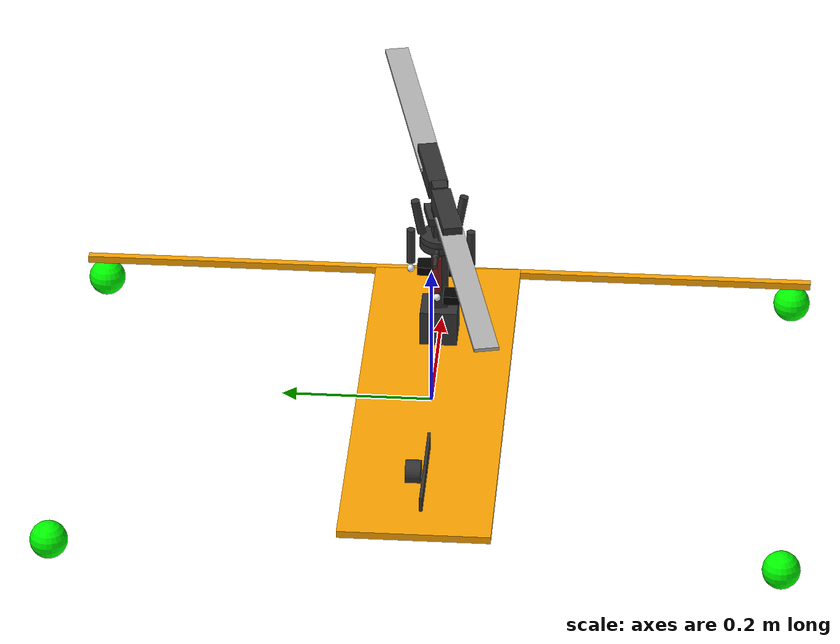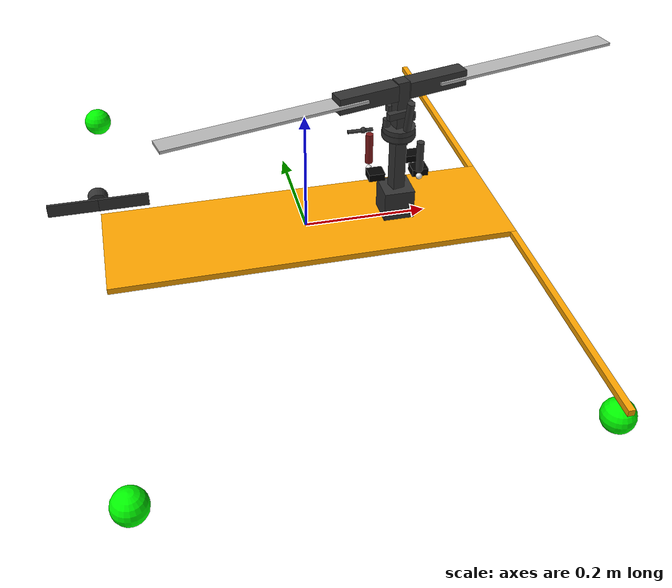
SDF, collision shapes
<?xml version="1.0"?>
<sdf version="1.9">
  <model name="helicopter_ddfp_ccw">
    <link name="base_link">
      <inertial>
        <pose degrees="true">0.16 0 0 0 0 0</pose>
        <mass>0.5</mass>
        <inertia>
          <ixx>0.001670833</ixx>
          <ixy>0</ixy>
          <ixz>0</ixz>
          <iyy>0.017608333</iyy>
          <iyz>0</iyz>
          <izz>0.019270833</izz>
        </inertia>
      </inertial>
      <collision name="collision">
        <geometry>
          <box>
            <size>0.65 0.2 0.01</size>
          </box>
        </geometry>
      </collision>
      <collision name="collision_stab_1">
        <pose degrees="true">0.32 0 0 0 0 0</pose>
        <geometry>
          <box>
            <size>0.01 1.0 0.01</size>
          </box>
        </geometry>
      </collision>
      <collision name="collision_stab_2">
        <pose degrees="true">0.32 0 0 0 0 0</pose>
        <geometry>
          <box>
            <size>0.01 1.0 0.01</size>
          </box>
        </geometry>
      </collision>
      <visual name="visual">
        <geometry>
          <box>
            <size>0.65 0.2 0.01</size>
          </box>
        </geometry>
        <material>
          <ambient>1 0.65 0</ambient>
          <diffuse>1 0.65 0</diffuse>
          <specular>0.1 0.1 0.1</specular>
        </material>
      </visual>
      <visual name="visual_stab_1">
        <pose degrees="true">0.32 0 0 0 0 0</pose>
        <geometry>
          <box>
            <size>0.01 1.0 0.01</size>
          </box>
        </geometry>
        <material>
          <ambient>1 0.65 0</ambient>
          <diffuse>1 0.65 0</diffuse>
          <specular>0.1 0.1 0.1</specular>
        </material>
      </visual>
      <visual name="visual_stab_2">
        <pose degrees="true">-0.32 0 0 0 0 0</pose>
        <geometry>
          <box>
            <size>0.01 1.0 0.01</size>
          </box>
        </geometry>
        <material>
          <ambient>1 0.65 0</ambient>
          <diffuse>1 0.65 0</diffuse>
          <specular>0.1 0.1 0.1</specular>
        </material>
      </visual>

      <sensor name="imu_sensor" type="imu">
        <pose degrees="true">0.15 0 0 180 0 0</pose>
        <always_on>1</always_on>
        <update_rate>1000.0</update_rate>
      </sensor>
    </link>

    <include>
      <uri>model://rotor_head_ccw</uri>
      <name>rotor_head_ccw</name>
      <pose degrees="true">0.15 0 0.23 0 0 13</pose>
    </include>
    <joint name="rotor_head_joint" type="fixed">
      <pose degrees="true">0 0 0 0 0 0</pose>
      <parent>base_link</parent>
      <child>rotor_head_ccw::base_link</child>
    </joint>

    <link name="tail_motor_link">
      <pose degrees="true">-0.32 0 0.1 90 0 0</pose>
      <inertial>
        <mass>0.05</mass>
        <inertia>
          <ixx>5.9375E-06</ixx>
          <ixy>0</ixy>
          <ixz>0</ixz>
          <iyy>5.9375E-06</iyy>
          <iyz>0</iyz>
          <izz>0.00001</izz>
        </inertia>
      </inertial>
      <collision name="collision">
        <geometry>
          <cylinder>
            <length>0.02</length>
            <radius>0.015</radius>
          </cylinder>
        </geometry>
      </collision>
      <collision name="collision_blade_1">
        <pose degrees="true">0.0375 0 0.015 0 0 0</pose>
        <geometry>
          <box>
            <size>0.075 0.02 0.004</size>
          </box>
        </geometry>
      </collision>
      <collision name="collision_blade_2">
        <pose degrees="true">-0.0375 0 0.015 0 0 180</pose>
        <geometry>
          <box>
            <size>0.075 0.02 0.004</size>
          </box>
        </geometry>
      </collision>
      <visual name="visual">
        <geometry>
          <cylinder>
            <length>0.02</length>
            <radius>0.015</radius>
          </cylinder>
        </geometry>
        <material>
          <ambient>0.2 0.2 0.2</ambient>
          <diffuse>0.2 0.2 0.2</diffuse>
          <specular>0.1 0.1 0.1 1</specular>
        </material>
      </visual>
      <visual name="visual_blade_1">
        <pose degrees="true">0.0375 0 0.015 0 0 0</pose>
        <geometry>
          <box>
            <size>0.075 0.02 0.004</size>
          </box>
        </geometry>
        <material>
          <ambient>0.01 0.01 0.01</ambient>
          <diffuse>0.01 0.01 0.01</diffuse>
          <specular>0.01 0.01 0.01 1</specular>
        </material>
      </visual>
      <visual name="visual_blade_2">
        <pose degrees="true">-0.0375 0 0.015 0 0 180</pose>
        <geometry>
          <box>
            <size>0.075 0.02 0.004</size>
          </box>
        </geometry>
        <material>
          <ambient>0.01 0.01 0.01</ambient>
          <diffuse>0.01 0.01 0.01</diffuse>
          <specular>0.01 0.01 0.01 1</specular>
        </material>
      </visual>
    </link>
    <joint name="tail_motor_joint" type="revolute">
      <pose degrees="true">0 0 0 0 0 0</pose>
      <parent>base_link</parent>
      <child>tail_motor_link</child>
      <axis>
        <xyz>0 0 1</xyz>
        <limit>
          <lower>-1.0e16</lower>
          <upper>1.0e16</upper>
        </limit>
        <dynamics>
          <damping>0.01</damping>
        </dynamics>
      </axis>
    </joint>

    <!-- stabiliser wheels -->
    <link name="wheel_1_link">
      <pose degrees="true">0.32 0.475 -0.03 0 0 0</pose>
      <inertial>
        <mass>0.05</mass>
        <inertia>
          <ixx>1.25000E-05</ixx>
          <ixy>0</ixy>
          <ixz>0</ixz>
          <iyy>1.25000E-05</iyy>
          <iyz>0</iyz>
          <izz>1.25000E-05</izz>
        </inertia>
      </inertial>
      <collision name="collision">
        <geometry>
          <sphere>
            <radius>0.025</radius>
          </sphere>
        </geometry>
        <surface>
          <friction>
            <ode>
              <mu>1.0e6</mu>
              <mu2>1.0e6</mu2>
            </ode>
          </friction>
        </surface>
      </collision>
      <visual name="visual">
        <geometry>
          <sphere>
            <radius>0.025</radius>
          </sphere>
        </geometry>
        <material>
          <ambient>0 1 0</ambient>
          <diffuse>0 1 0</diffuse>
          <specular>0.1 0.1 0.1 1</specular>
        </material>
      </visual>
    </link>
    <joint name="wheel_1_joint" type="fixed">
      <pose degrees="true">0 0 0 0 0 0</pose>
      <parent>base_link</parent>
      <child>wheel_1_link</child>
    </joint>

    <link name="wheel_2_link">
      <pose degrees="true">0.32 -0.475 -0.03 0 0 0</pose>
      <inertial>
        <mass>0.05</mass>
        <inertia>
          <ixx>1.25000E-05</ixx>
          <ixy>0</ixy>
          <ixz>0</ixz>
          <iyy>1.25000E-05</iyy>
          <iyz>0</iyz>
          <izz>1.25000E-05</izz>
        </inertia>
      </inertial>
      <collision name="collision">
        <geometry>
          <sphere>
            <radius>0.025</radius>
          </sphere>
        </geometry>
        <surface>
          <friction>
            <ode>
              <mu>1.0e6</mu>
              <mu2>1.0e6</mu2>
            </ode>
          </friction>
          </surface>
      </collision>
      <visual name="visual">
        <geometry>
          <sphere>
            <radius>0.025</radius>
          </sphere>
        </geometry>
        <material>
          <ambient>0 1 0</ambient>
          <diffuse>0 1 0</diffuse>
          <specular>0.1 0.1 0.1 1</specular>
        </material>
      </visual>
    </link>
    <joint name="wheel_2_joint" type="fixed">
      <pose degrees="true">0 0 0 0 0 0</pose>
      <parent>base_link</parent>
      <child>wheel_2_link</child>
    </joint>

    <link name="wheel_3_link">
      <pose degrees="true">-0.32 -0.475 -0.03 0 0 0</pose>
      <inertial>
        <mass>0.05</mass>
        <inertia>
          <ixx>1.25000E-05</ixx>
          <ixy>0</ixy>
          <ixz>0</ixz>
          <iyy>1.25000E-05</iyy>
          <iyz>0</iyz>
          <izz>1.25000E-05</izz>
        </inertia>
      </inertial>
      <collision name="collision">
        <geometry>
          <sphere>
            <radius>0.025</radius>
          </sphere>
        </geometry>
        <surface>
          <friction>
            <ode>
              <mu>1.0e6</mu>
              <mu2>1.0e6</mu2>
            </ode>
          </friction>
          </surface>
      </collision>
      <visual name="visual">
        <geometry>
          <sphere>
            <radius>0.025</radius>
          </sphere>
        </geometry>
        <material>
          <ambient>0 1 0</ambient>
          <diffuse>0 1 0</diffuse>
          <specular>0.1 0.1 0.1 1</specular>
        </material>
      </visual>
    </link>
    <joint name="wheel_3_joint" type="fixed">
      <pose degrees="true">0 0 0 0 0 0</pose>
      <parent>base_link</parent>
      <child>wheel_3_link</child>
    </joint>

    <link name="wheel_4_link">
      <pose degrees="true">-0.32 0.475 -0.03 0 0 0</pose>
      <inertial>
        <mass>0.05</mass>
        <inertia>
          <ixx>1.25000E-05</ixx>
          <ixy>0</ixy>
          <ixz>0</ixz>
          <iyy>1.25000E-05</iyy>
          <iyz>0</iyz>
          <izz>1.25000E-05</izz>
        </inertia>
      </inertial>
      <collision name="collision">
        <geometry>
          <sphere>
            <radius>0.025</radius>
          </sphere>
        </geometry>
        <surface>
          <friction>
            <ode>
              <mu>1.0e6</mu>
              <mu2>1.0e6</mu2>
            </ode>
          </friction>
          </surface>
      </collision>
      <visual name="visual">
        <geometry>
          <sphere>
            <radius>0.025</radius>
          </sphere>
        </geometry>
        <material>
          <ambient>0 1 0</ambient>
          <diffuse>0 1 0</diffuse>
          <specular>0.1 0.1 0.1 1</specular>
        </material>
      </visual>
    </link>
    <joint name="wheel_4_joint" type="fixed">
      <pose degrees="true">0 0 0 0 0 0</pose>
      <parent>base_link</parent>
      <child>wheel_4_link</child>
    </joint>

    <!-- plugins -->
    <plugin name="gz::sim::systems::JointStatePublisher"
        filename="gz-sim-joint-state-publisher-system">
    </plugin>

    <plugin name="gz::sim::systems::JointController"
      filename="gz-sim-joint-controller-system">
      <joint_name>tail_motor_joint</joint_name>
      <initial_velocity>0.0</initial_velocity>
      <use_force_commands>1</use_force_commands>
      <use_actuator_msg>0</use_actuator_msg>
      <p_gain>0.02</p_gain>
      <i_gain>0.01</i_gain>
      <d_gain>0.0</d_gain>
      <i_max>1</i_max>
      <i_min>-1</i_min>
      <cmd_max>5</cmd_max>
      <cmd_min>-5</cmd_min>
      <cmd_offset>0</cmd_offset>
    </plugin>

    <!-- tail rotor lift -->
    <plugin name="gz::sim::systems::LiftDrag"
      filename="gz-sim-lift-drag-system">
      <a0>0.3</a0>
      <alpha_stall>1.4</alpha_stall>
      <cla>4.2500</cla>
      <cda>0.10</cda>
      <cma>0.0</cma>
      <cla_stall>-0.025</cla_stall>
      <cda_stall>0.0</cda_stall>
      <cma_stall>0.0</cma_stall>
      <area>0.0015</area>
      <air_density>1.2041</air_density>
      <cp>0.0375 0 0</cp>
      <forward>0 1 0</forward>
      <upward>0 0 1</upward>
      <link_name>tail_motor_link</link_name>
    </plugin>
    <plugin name="gz::sim::systems::LiftDrag"
      filename="gz-sim-lift-drag-system">
      <a0>0.3</a0>
      <alpha_stall>1.4</alpha_stall>
      <cla>4.2500</cla>
      <cda>0.10</cda>
      <cma>0.0</cma>
      <cla_stall>-0.025</cla_stall>
      <cda_stall>0.0</cda_stall>
      <cma_stall>0.0</cma_stall>
      <area>0.0015</area>
      <air_density>1.2041</air_density>
      <cp>-0.0375 0 0</cp>
      <forward>0 -1 0</forward>
      <upward>0 0 1</upward>
      <link_name>tail_motor_link</link_name>
    </plugin>

    <plugin name="ArduPilotPlugin"
      filename="ArduPilotPlugin">
      <!-- Port settings -->
      <fdm_addr>127.0.0.1</fdm_addr>
      <fdm_port_in>9002</fdm_port_in>
      <connectionTimeoutMaxCount>5</connectionTimeoutMaxCount>
      <lock_step>1</lock_step>
      <have_32_channels>0</have_32_channels>

      <!-- Frame conventions
        Require by ArduPilot: change model and gazebo from XYZ to XY-Z coordinates
      -->
      <modelXYZToAirplaneXForwardZDown degrees="true">0 0 0 180 0 0</modelXYZToAirplaneXForwardZDown>
      <gazeboXYZToNED degrees="true">0 0 0 180 0 90</gazeboXYZToNED>

      <!-- Sensors -->
      <imuName>base_link::imu_sensor</imuName>

      <!--
        FRAME_CLASS      6 (Heli)
        FRAME_TYPE       1 (X)
      -->

      <!--
        SERVO8_FUNCTION 31 (HeliRSC)
      -->
      <control channel="7">
        <jointName>rotor_head_ccw::main_joint</jointName>
        <multiplier>500</multiplier>
        <offset>0</offset>
        <servo_min>1000</servo_min>
        <servo_max>2000</servo_max>
        <type>COMMAND</type>
        <cmd_topic>/model/rotor_head_ccw/joint/main_joint/cmd_vel</cmd_topic>
      </control>

      <!--
        SERVO4_FUNCTION 36 (Motor4)
      -->
      <control channel="3">
        <jointName>tail_motor_joint</jointName>
        <multiplier>800</multiplier>
        <offset>0</offset>
        <servo_min>1000</servo_min>
        <servo_max>2000</servo_max>
        <type>COMMAND</type>
        <cmd_topic>/model/helicopter_ddfp_ccw/joint/tail_motor_joint/cmd_vel</cmd_topic>
      </control>

      <!--
        SERVO1_FUNCTION 33 (Motor1)
      -->
      <control channel="0">
        <jointName>rotor_head_ccw::servo_arm_1_joint</jointName>
        <multiplier>0.04</multiplier>
        <offset>-0.5</offset>
        <servo_max>2000</servo_max>
        <servo_min>1000</servo_min>
        <type>COMMAND</type>
        <cmd_topic>/model/rotor_head_ccw/joint/servo_arm_1_joint/0/cmd_pos</cmd_topic>
      </control>

      <!--
        SERVO2_FUNCTION 34 (Motor2)
      -->
      <control channel="1">
        <jointName>rotor_head_ccw::servo_arm_2_joint</jointName>
        <multiplier>0.04</multiplier>
        <offset>-0.5</offset>
        <servo_max>2000</servo_max>
        <servo_min>1000</servo_min>
        <type>COMMAND</type>
        <cmd_topic>/model/rotor_head_ccw/joint/servo_arm_2_joint/0/cmd_pos</cmd_topic>
      </control>

      <!--
        SERVO3_FUNCTION 35 (Motor3)
      -->
      <control channel="2">
        <jointName>rotor_head_ccw::servo_arm_3_joint</jointName>
        <multiplier>0.04</multiplier>
        <offset>-0.5</offset>
        <servo_max>2000</servo_max>
        <servo_min>1000</servo_min>
        <type>COMMAND</type>
        <cmd_topic>/model/rotor_head_ccw/joint/servo_arm_3_joint/0/cmd_pos</cmd_topic>
      </control>

    </plugin>
  </model>

</sdf>
